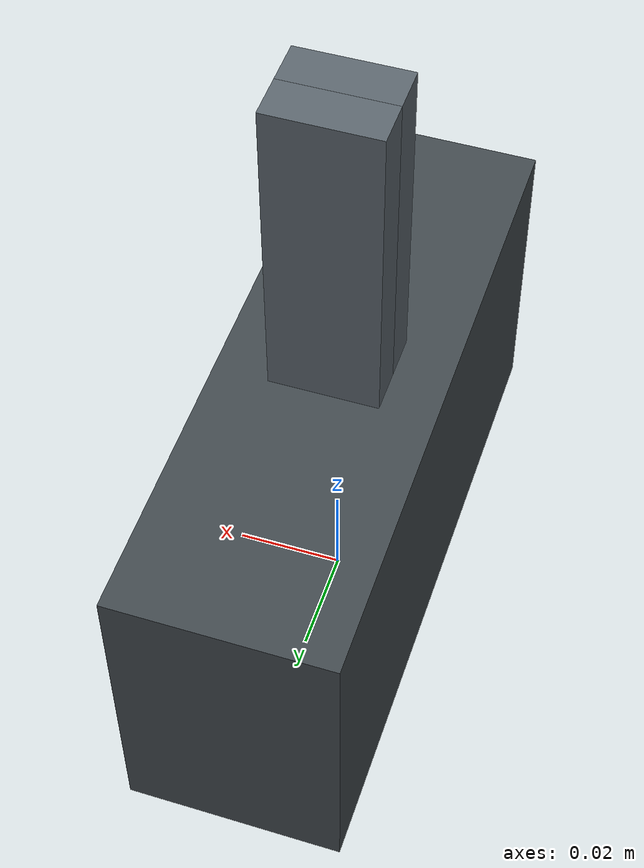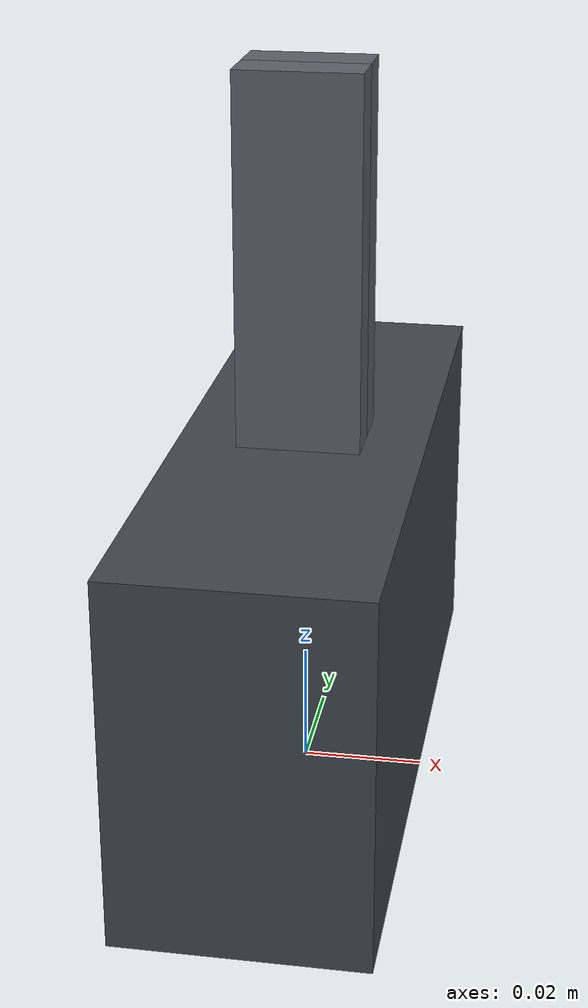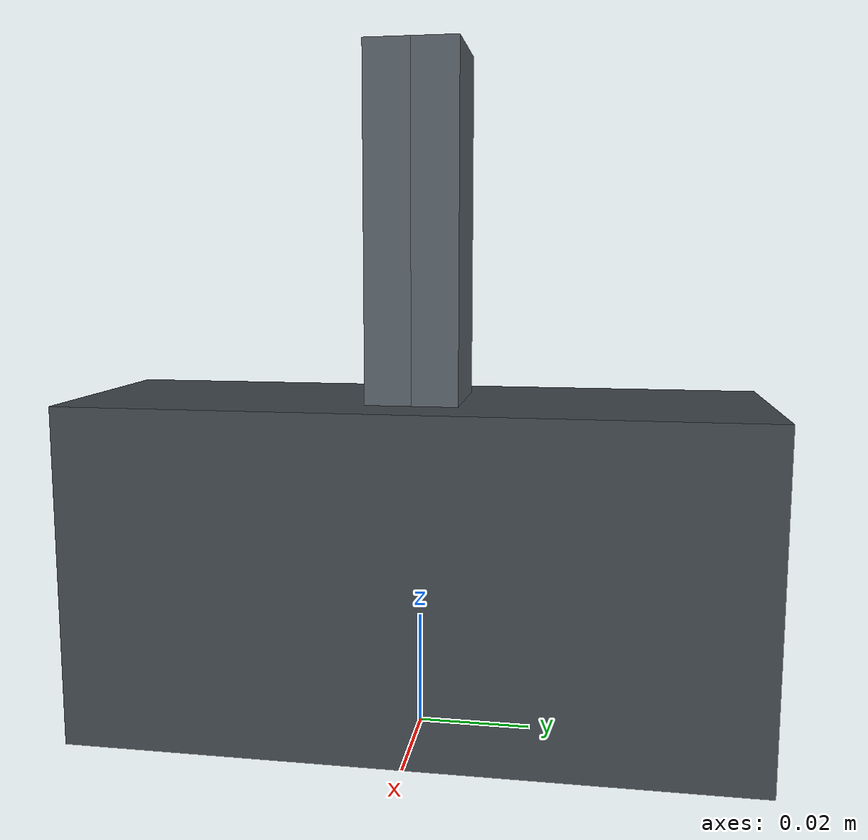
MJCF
<mujoco model="generic compact parallel jaw_ideal">
  <compiler angle="radian" autolimits="true" />
  <option />
  <default>
    <joint damping="1" armature=".01" />
  </default>
  <asset />
  <worldbody>
    <body name="hand">
      <geom type="box" size=".020 .060 .030" pos="0 0 .030" mass=".45" rgba=".25 .28 .30 1" />
      <body name="left_finger" pos="0 0 .060">
        <joint name="finger_joint1" type="slide" axis="0 1 0" range="0 .05" />
        <geom type="box" size=".010 .004 .030" pos="0 .004 .030" mass=".055" rgba=".35 .39 .42 1" priority="1" solref=".002 1" solimp=".99 .999 .001" />
      </body>
      <body name="right_finger" pos="0 0 .060" quat="0 0 0 1">
        <joint name="finger_joint2" type="slide" axis="0 1 0" range="0 .05" />
        <geom type="box" size=".010 .004 .030" pos="0 .004 .030" mass=".055" rgba=".35 .39 .42 1" priority="1" solref=".002 1" solimp=".99 .999 .001" />
      </body>
    </body>
  </worldbody>
  <contact>
    <exclude body1="hand" body2="left_finger" />
    <exclude body1="hand" body2="right_finger" />
  </contact>
  <tendon>
    <fixed name="split">
      <joint joint="finger_joint1" coef=".5" />
      <joint joint="finger_joint2" coef=".5" />
    </fixed>
  </tendon>
  <equality>
    <joint joint1="finger_joint1" joint2="finger_joint2" solref=".005 1" />
    <weld name="ideal_grasp" body1="hand" body2="object" active="false" solref=".002 1" solimp=".99 .999 .001" torquescale=".05" />
  </equality>
  <actuator>
    <general name="close" tendon="split" biastype="affine" />
  </actuator>
</mujoco>
